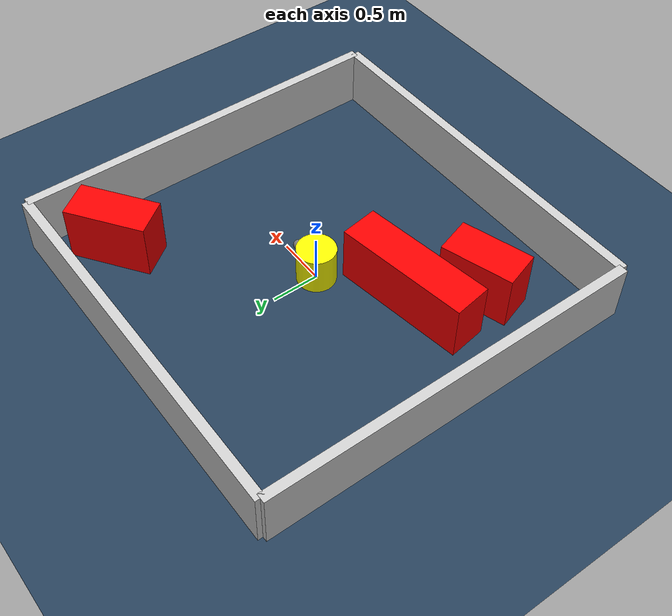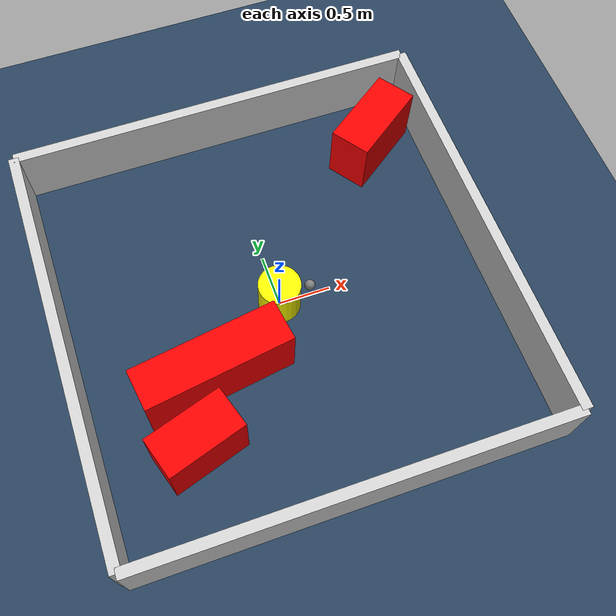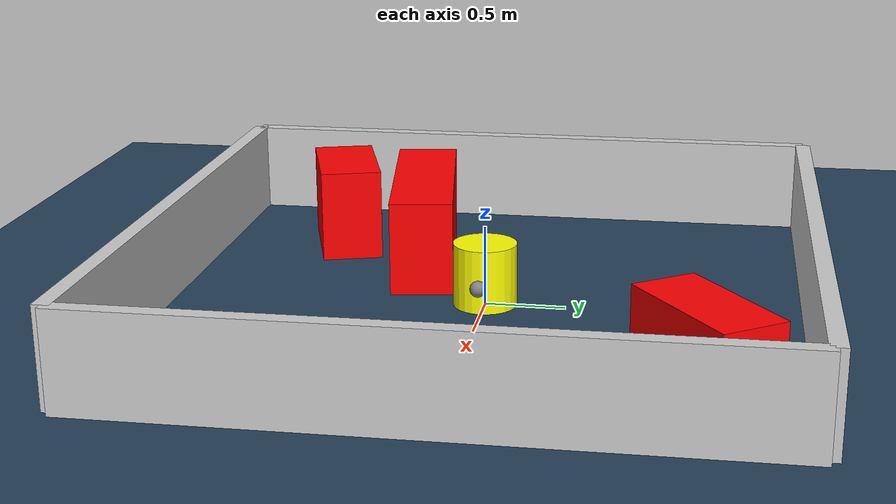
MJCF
<?xml version="1.0" ?>
<mujoco model="generated_environment">
  <option timestep="0.01" integrator="RK4" cone="elliptic"/>
  <default>
    <geom density="1"/>
  </default>
  <asset>
    <texture builtin="gradient" height="3072" rgb1="0.3 0.5 0.7" rgb2="0 0 0" type="skybox" width="512"/>
    <texture builtin="checker" height="300" mark="edge" markrgb="0.8 0.8 0.8" name="groundplane" rgb1="0.2 0.3 0.4" rgb2="0.1 0.2 0.3" type="2d" width="300"/>
    <material name="groundplane" reflectance="0.2" texrepeat="5 5" texture="groundplane" texuniform="true"/>
    <material name="robot" rgba="0.0 1.0 0.0 1"/>
  </asset>
  <worldbody>
    <light dir="0 0 -1" directional="true" pos="0 0 1.5"/>
    <geom condim="4" friction="1.0 0.005 0.001" material="groundplane" name="floor" size="0 0 0.05" type="plane"/>
    <body name="walls">
      <geom name="wall_1" condim="4" pos="-2.0 0.0 0.3" rgba="0.800000011920929 0.800000011920929 0.800000011920929 1.0" size="0.05 2.0 0.3" type="box"/>
      <geom name="wall_2" condim="4" pos="2.0 0.0 0.3" rgba="0.800000011920929 0.800000011920929 0.800000011920929 1.0" size="0.05 2.0 0.3" type="box"/>
      <geom name="wall_3" condim="4" pos="0.0 -2.0 0.3" rgba="0.800000011920929 0.800000011920929 0.800000011920929 1.0" size="2.0 0.05 0.3" type="box"/>
      <geom name="wall_4" condim="4" pos="0.0 2.0 0.3" rgba="0.800000011920929 0.800000011920929 0.800000011920929 1.0" size="2.0 0.05 0.3" type="box"/>
    </body>
    <body name="robot">
      <joint name="joint_x" type="slide" pos="0 0 0" axis="1 0 0"/>
      <joint name="joint_y" type="slide" pos="0 0 0" axis="0 1 0"/>
      <geom name="robot" type="sphere" pos="0.3 0.0 0.2" size="0.05" mass="5." friction="1.0 0.005 0.0001" condim="4" rgba="0.5 0.5 0.5 1.0"/>
      <site name="sensor_ball"/>
    </body>
    <body name="obstacle_movable_1">
      <geom name="obstacle_movable_1" condim="4" pos="0.0 0.0 0.2" euler="0 0 0.0" friction="1.0 0.005 0.001" rgba="1.0 1.0 0.0 1.0" size="0.2 0.2 0.0" type="cylinder" mass="0.1"/>
      <joint type="free"/>
    </body>
    <body name="obstacle_2_static">
      <geom name="obstacle_2_static" condim="4" pos="1.4471988142384442 1.374479125917681 0.3" euler="0 0 35.51045298563194" friction="1.0 0.005 0.001" rgba="1 0 0 1" size="0.4213468020379543 0.2 0.3" type="box"/>
    </body>
    <body name="obstacle_3_static">
      <geom name="obstacle_3_static" condim="4" pos="-1.1187993487451666 -1.134962398147886 0.3" euler="0 0 197.3441790758728" friction="1.0 0.005 0.001" rgba="1 0 0 1" size="0.37768072571919364 0.2 0.3" type="box"/>
    </body>
    <body name="obstacle_4_static">
      <geom name="obstacle_4_static" condim="4" pos="-0.7948851271197054 -0.5286830380308538 0.3" euler="0 0 8.64624968295432" friction="1.0 0.005 0.001" rgba="1 0 0 1" size="0.7026107668250935 0.2 0.3" type="box"/>
    </body>
  </worldbody>
  <actuator>
    <motor name="actuator_x" joint="joint_x" gear="1" ctrlrange="-1 1"/>
    <motor name="actuator_y" joint="joint_y" gear="1" ctrlrange="-1 1"/>
  </actuator>
</mujoco>
